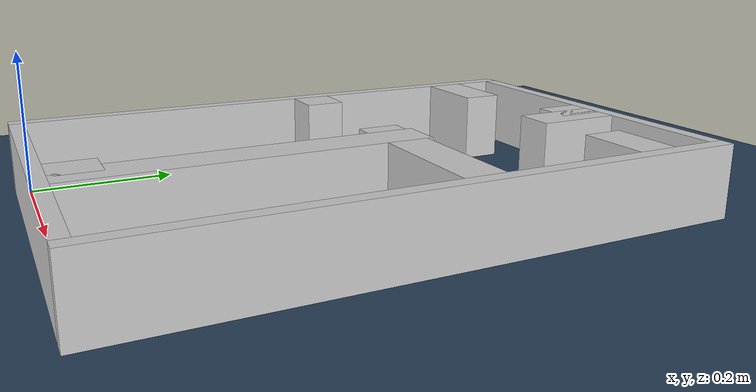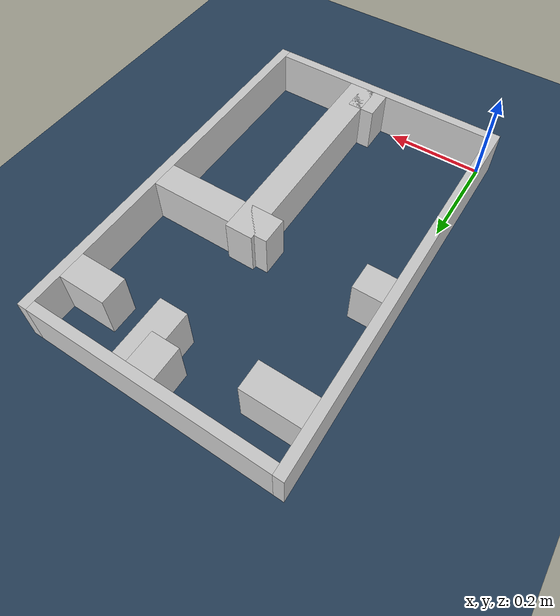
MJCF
<?xml version="1.0" ?>
<mujoco model="generated_real_template">
  <compiler angle="degree"/>
  <option timestep="0.002" integrator="implicitfast" iterations="100" cone="elliptic"/>
  <default>
    <geom density="1"/>
  </default>
  <asset>
    <texture builtin="gradient" height="3072" rgb1="0.3 0.5 0.7" rgb2="0 0 0" type="skybox" width="512"/>
    <texture builtin="checker" height="300" mark="edge" markrgb="0.8 0.8 0.8" name="groundplane" rgb1="0.2 0.3 0.4" rgb2="0.1 0.2 0.3" type="2d" width="300"/>
    <material name="groundplane" reflectance="0.2" texrepeat="5 5" texture="groundplane" texuniform="true"/>
  </asset>
  <worldbody>
    <light dir="0 0 -1" directional="true" pos="0 0 1.5"/>
    <geom name="floor" type="plane" condim="4" friction="0.5 0.005 0.001" material="groundplane" size="0 0 0.05"/>
    <body name="walls">
      <geom name="wall_boundary_left" type="box" condim="4" friction="1.0 0.005 0.0001" rgba="0.8 0.8 0.8 1" pos="-0.010000 0.387500 0.050000" euler="0 0 0.000000" size="0.010000 0.407500 0.050000"/>
      <geom name="wall_boundary_right" type="box" condim="4" friction="1.0 0.005 0.0001" rgba="0.8 0.8 0.8 1" pos="0.500000 0.387500 0.050000" euler="0 0 0.000000" size="0.010000 0.407500 0.050000"/>
      <geom name="wall_boundary_bottom" type="box" condim="4" friction="1.0 0.005 0.0001" rgba="0.8 0.8 0.8 1" pos="0.245000 -0.010000 0.050000" euler="0 0 0.000000" size="0.245000 0.010000 0.050000"/>
      <geom name="wall_boundary_top" type="box" condim="4" friction="1.0 0.005 0.0001" rgba="0.8 0.8 0.8 1" pos="0.245000 0.785000 0.050000" euler="0 0 0.000000" size="0.245000 0.010000 0.050000"/>
      <geom name="wall_inner_1_1" type="box" condim="4" friction="1.0 0.005 0.0001" rgba="0.8 0.8 0.8 1" pos="0.288310 0.235658 0.050000" euler="0 0 90.000000" size="0.235658 0.028500 0.050000"/>
      <geom name="wall_inner_1_2" type="box" condim="4" friction="1.0 0.005 0.0001" rgba="0.8 0.8 0.8 1" pos="0.288310 0.715377 0.050000" euler="0 0 90.000000" size="0.059623 0.028500 0.050000"/>
      <geom name="wall_inner_2_1" type="box" condim="4" friction="1.0 0.005 0.0001" rgba="0.8 0.8 0.8 1" pos="0.057600 0.688174 0.050000" euler="0 0 0.000000" size="0.057600 0.028500 0.050000"/>
      <geom name="wall_inner_2_2" type="box" condim="4" friction="1.0 0.005 0.0001" rgba="0.8 0.8 0.8 1" pos="0.440971 0.688174 0.050000" euler="0 0 0.000000" size="0.049029 0.028500 0.050000"/>
      <geom name="wall_inner_3_1" type="box" condim="4" friction="1.0 0.005 0.0001" rgba="0.8 0.8 0.8 1" pos="0.029079 0.434134 0.050000" euler="0 0 0.000000" size="0.029079 0.028500 0.050000"/>
      <geom name="wall_inner_3_2" type="box" condim="4" friction="1.0 0.005 0.0001" rgba="0.8 0.8 0.8 1" pos="0.361626 0.434134 0.050000" euler="0 0 0.000000" size="0.128374 0.028500 0.050000"/>
      <geom name="wall_inner_4_1" type="box" condim="4" friction="1.0 0.005 0.0001" rgba="0.8 0.8 0.8 1" pos="0.260032 0.031261 0.050000" euler="0 0 90.000000" size="0.031261 0.028500 0.050000"/>
      <geom name="wall_inner_4_2" type="box" condim="4" friction="1.0 0.005 0.0001" rgba="0.8 0.8 0.8 1" pos="0.260032 0.743407 0.050000" euler="0 0 90.000000" size="0.031593 0.028500 0.050000"/>
    </body>
  </worldbody>
</mujoco>
